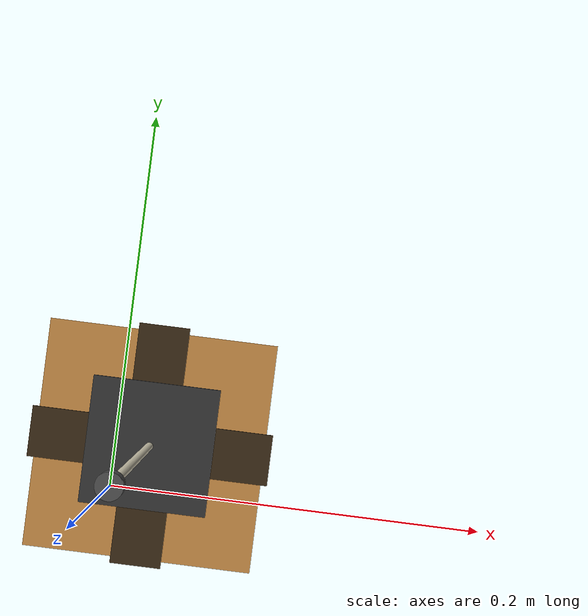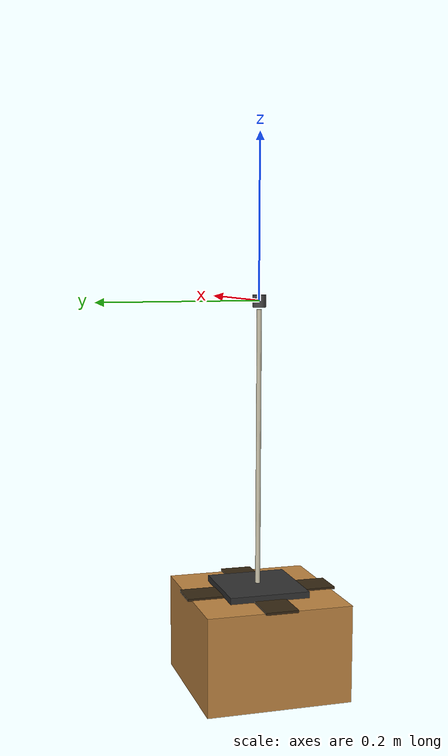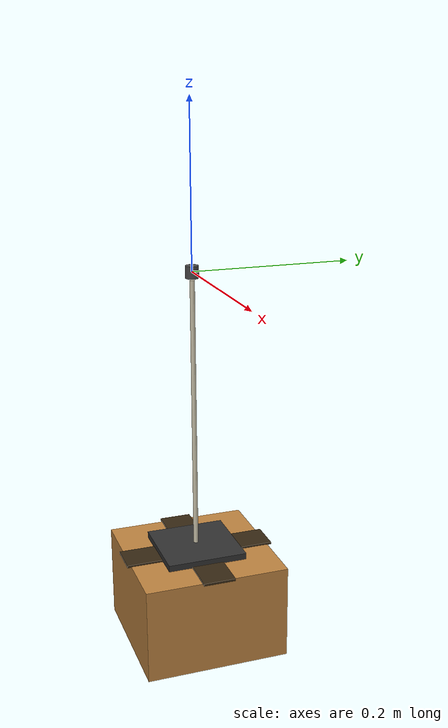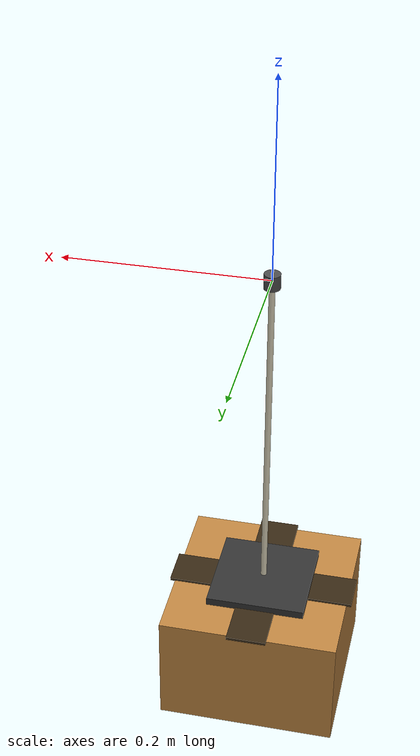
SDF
<?xml version="1.0" encoding="UTF-8"?>
<sdf version="1.9">
  <!-- Hanging cargo: origin at the attachment point (top of rope).
       The whole model is rotated by the dashboard's pendulum simulation
       to create realistic swinging. -->
  <model name="package">
    <static>true</static>

    <!-- Hook (attachment point at model origin) -->
    <link name="hook">
      <visual name="visual">
        <geometry><cylinder><radius>0.008</radius><length>0.015</length></cylinder></geometry>
        <material>
          <ambient>0.25 0.25 0.25 1</ambient>
          <diffuse>0.30 0.30 0.30 1</diffuse>
          <specular>0.4 0.4 0.4 1</specular>
        </material>
      </visual>
    </link>

    <!-- Rope / yarn (thin cylinder hanging down from hook) -->
    <link name="rope">
      <pose>0 0 -0.18 0 0 0</pose>
      <visual name="visual">
        <geometry><cylinder><radius>0.003</radius><length>0.34</length></cylinder></geometry>
        <material>
          <ambient>0.85 0.82 0.72 1</ambient>
          <diffuse>0.85 0.82 0.72 1</diffuse>
        </material>
      </visual>
    </link>

    <!-- Grip plate (junction between rope and box) -->
    <link name="grip">
      <pose>0 0 -0.355 0 0 0</pose>
      <visual name="visual">
        <geometry><box><size>0.10 0.10 0.008</size></box></geometry>
        <material>
          <ambient>0.15 0.15 0.15 1</ambient>
          <diffuse>0.20 0.20 0.20 1</diffuse>
          <specular>0.3 0.3 0.3 1</specular>
        </material>
      </visual>
    </link>

    <!-- Main cardboard box -->
    <link name="box">
      <pose>0 0 -0.42 0 0 0</pose>
      <visual name="visual">
        <geometry><box><size>0.18 0.18 0.12</size></box></geometry>
        <material>
          <ambient>0.76 0.53 0.26 1</ambient>
          <diffuse>0.76 0.53 0.26 1</diffuse>
          <specular>0.1 0.1 0.05 1</specular>
        </material>
      </visual>
    </link>

    <!-- Tape stripe (lengthwise) -->
    <link name="tape_top">
      <pose>0 0 -0.359 0 0 0</pose>
      <visual name="visual">
        <geometry><box><size>0.19 0.04 0.003</size></box></geometry>
        <material>
          <ambient>0.22 0.16 0.08 1</ambient>
          <diffuse>0.22 0.16 0.08 1</diffuse>
        </material>
      </visual>
    </link>

    <!-- Tape stripe (widthwise) -->
    <link name="tape_cross">
      <pose>0 0 -0.359 0 0 1.5708</pose>
      <visual name="visual">
        <geometry><box><size>0.19 0.04 0.003</size></box></geometry>
        <material>
          <ambient>0.22 0.16 0.08 1</ambient>
          <diffuse>0.22 0.16 0.08 1</diffuse>
        </material>
      </visual>
    </link>

  </model>
</sdf>
